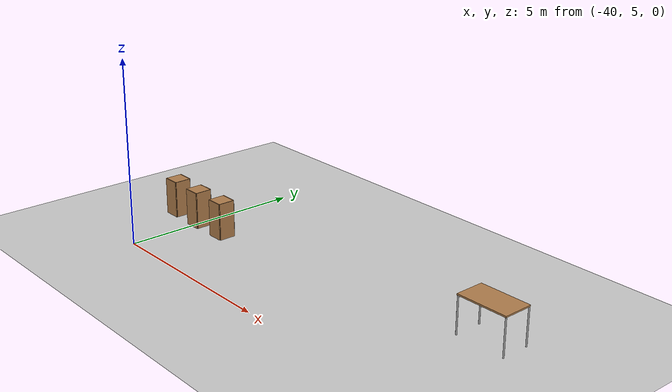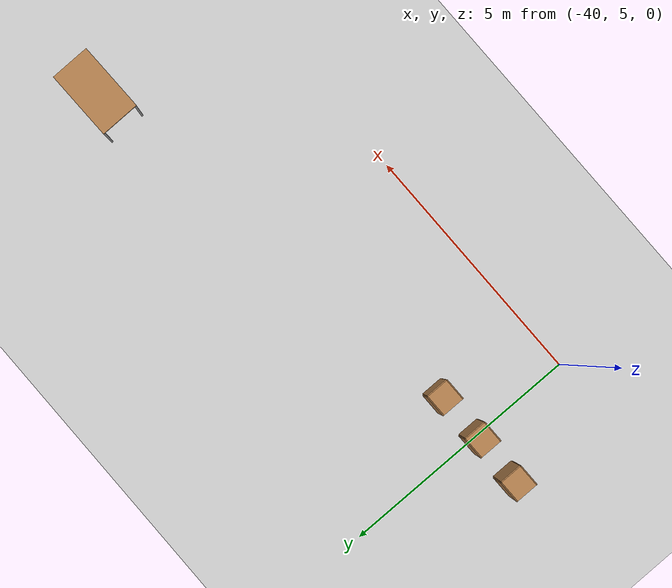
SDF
<sdf version="1.6">
 <world name="default">
  <model name="ground_plane">
   <static>1</static>
   <link name="link">
    <collision name="collision">
     <geometry><plane><normal>0 0 1</normal><size>100 100</size></plane></geometry>
     <surface><friction><ode><mu>100</mu><mu2>50</mu2></ode></friction></surface>
    </collision>
    <visual name="visual">
     <cast_shadows>0</cast_shadows>
     <geometry><plane><normal>0 0 1</normal><size>100 100</size></plane></geometry>
     <material>
      <script><uri>file://media/materials/scripts/gazebo.material</uri><name>Gazebo/Grey</name></script>
     </material>
    </visual>
   </link>
  </model>
  <model name="cabinet">
   <static>1</static>
   <link name="cabinet_bottom_plate">
    <inertial>
     <pose>0 0 -1 0 -0 0</pose>
     <inertia><ixx>2.05</ixx><ixy>0</ixy><ixz>0</ixz><iyy>2.05</iyy><iyz>0</iyz><izz>2.05</izz></inertia>
     <mass>25</mass>
    </inertial>
    <collision name="cabinet_bottom_plate_geom">
     <pose>0 0 0.01 0 -0 0</pose>
     <geometry><box><size>0.45 0.45 0.02</size></box></geometry>
    </collision>
    <visual name="cabinet_bottom_plate_geom_visual">
     <pose>0 0 0.01 0 -0 0</pose>
     <geometry><box><size>0.45 0.45 0.02</size></box></geometry>
     <material>
      <script><uri>file://media/materials/scripts/gazebo.material</uri><name>Gazebo/Wood</name></script>
     </material>
    </visual>
    <collision name="cabinet_bottom_plate_geom_cabinet_back_plate">
     <pose>0.235 0 0.51 0 -0 0</pose>
     <geometry><box><size>0.02 0.45 1.02</size></box></geometry>
    </collision>
    <visual name="cabinet_bottom_plate_geom_cabinet_back_plate_visual">
     <pose>0.235 0 0.51 0 -0 0</pose>
     <geometry><box><size>0.02 0.45 1.02</size></box></geometry>
     <material>
      <script><uri>file://media/materials/scripts/gazebo.material</uri><name>Gazebo/Wood</name></script>
     </material>
    </visual>
    <collision name="cabinet_bottom_plate_geom_cabinet_left_plate">
     <pose>0 0.235 0.51 0 -0 0</pose>
     <geometry><box><size>0.45 0.02 1.02</size></box></geometry>
    </collision>
    <visual name="cabinet_bottom_plate_geom_cabinet_left_plate_visual">
     <pose>0 0.235 0.51 0 -0 0</pose>
     <geometry><box><size>0.45 0.02 1.02</size></box></geometry>
     <material>
      <script><uri>file://media/materials/scripts/gazebo.material</uri><name>Gazebo/Wood</name></script>
     </material>
    </visual>
    <collision name="cabinet_bottom_plate_geom_cabinet_middle_plate">
     <pose>0 0 0.51 0 -0 0</pose>
     <geometry><box><size>0.45 0.45 0.02</size></box></geometry>
    </collision>
    <visual name="cabinet_bottom_plate_geom_cabinet_middle_plate_visual">
     <pose>0 0 0.51 0 -0 0</pose>
     <geometry><box><size>0.45 0.45 0.02</size></box></geometry>
     <material>
      <script><uri>file://media/materials/scripts/gazebo.material</uri><name>Gazebo/Wood</name></script>
     </material>
    </visual>
    <collision name="cabinet_bottom_plate_geom_cabinet_right_plate">
     <pose>0 -0.235 0.51 0 -0 0</pose>
     <geometry><box><size>0.45 0.02 1.02</size></box></geometry>
    </collision>
    <visual name="cabinet_bottom_plate_geom_cabinet_right_plate_visual">
     <pose>0 -0.235 0.51 0 -0 0</pose>
     <geometry><box><size>0.45 0.02 1.02</size></box></geometry>
     <material>
      <script><uri>file://media/materials/scripts/gazebo.material</uri><name>Gazebo/Wood</name></script>
     </material>
    </visual>
    <collision name="cabinet_bottom_plate_geom_cabinet_top_plate">
     <pose>0 0 1.01 0 -0 0</pose>
     <geometry><box><size>0.45 0.45 0.02</size></box></geometry>
    </collision>
    <visual name="cabinet_bottom_plate_geom_cabinet_top_plate_visual">
     <pose>0 0 1.01 0 -0 0</pose>
     <geometry><box><size>0.45 0.45 0.02</size></box></geometry>
     <material>
      <script><uri>file://media/materials/scripts/gazebo.material</uri><name>Gazebo/Wood</name></script>
     </material>
    </visual>
   </link>
   <pose>-41.027 7.1085 0 0 -0 0</pose>
  </model>
  <model name="cabinet_0">
   <static>1</static>
   <link name="cabinet_bottom_plate">
    <inertial>
     <pose>0 0 -1 0 -0 0</pose>
     <inertia><ixx>2.05</ixx><ixy>0</ixy><ixz>0</ixz><iyy>2.05</iyy><iyz>0</iyz><izz>2.05</izz></inertia>
     <mass>25</mass>
    </inertial>
    <collision name="cabinet_bottom_plate_geom">
     <pose>0 0 0.01 0 -0 0</pose>
     <geometry><box><size>0.45 0.45 0.02</size></box></geometry>
    </collision>
    <visual name="cabinet_bottom_plate_geom_visual">
     <pose>0 0 0.01 0 -0 0</pose>
     <geometry><box><size>0.45 0.45 0.02</size></box></geometry>
     <material>
      <script><uri>file://media/materials/scripts/gazebo.material</uri><name>Gazebo/Wood</name></script>
     </material>
    </visual>
    <collision name="cabinet_bottom_plate_geom_cabinet_back_plate">
     <pose>0.235 0 0.51 0 -0 0</pose>
     <geometry><box><size>0.02 0.45 1.02</size></box></geometry>
    </collision>
    <visual name="cabinet_bottom_plate_geom_cabinet_back_plate_visual">
     <pose>0.235 0 0.51 0 -0 0</pose>
     <geometry><box><size>0.02 0.45 1.02</size></box></geometry>
     <material>
      <script><uri>file://media/materials/scripts/gazebo.material</uri><name>Gazebo/Wood</name></script>
     </material>
    </visual>
    <collision name="cabinet_bottom_plate_geom_cabinet_left_plate">
     <pose>0 0.235 0.51 0 -0 0</pose>
     <geometry><box><size>0.45 0.02 1.02</size></box></geometry>
    </collision>
    <visual name="cabinet_bottom_plate_geom_cabinet_left_plate_visual">
     <pose>0 0.235 0.51 0 -0 0</pose>
     <geometry><box><size>0.45 0.02 1.02</size></box></geometry>
     <material>
      <script><uri>file://media/materials/scripts/gazebo.material</uri><name>Gazebo/Wood</name></script>
     </material>
    </visual>
    <collision name="cabinet_bottom_plate_geom_cabinet_middle_plate">
     <pose>0 0 0.51 0 -0 0</pose>
     <geometry><box><size>0.45 0.45 0.02</size></box></geometry>
    </collision>
    <visual name="cabinet_bottom_plate_geom_cabinet_middle_plate_visual">
     <pose>0 0 0.51 0 -0 0</pose>
     <geometry><box><size>0.45 0.45 0.02</size></box></geometry>
     <material>
      <script><uri>file://media/materials/scripts/gazebo.material</uri><name>Gazebo/Wood</name></script>
     </material>
    </visual>
    <collision name="cabinet_bottom_plate_geom_cabinet_right_plate">
     <pose>0 -0.235 0.51 0 -0 0</pose>
     <geometry><box><size>0.45 0.02 1.02</size></box></geometry>
    </collision>
    <visual name="cabinet_bottom_plate_geom_cabinet_right_plate_visual">
     <pose>0 -0.235 0.51 0 -0 0</pose>
     <geometry><box><size>0.45 0.02 1.02</size></box></geometry>
     <material>
      <script><uri>file://media/materials/scripts/gazebo.material</uri><name>Gazebo/Wood</name></script>
     </material>
    </visual>
    <collision name="cabinet_bottom_plate_geom_cabinet_top_plate">
     <pose>0 0 1.01 0 -0 0</pose>
     <geometry><box><size>0.45 0.45 0.02</size></box></geometry>
    </collision>
    <visual name="cabinet_bottom_plate_geom_cabinet_top_plate_visual">
     <pose>0 0 1.01 0 -0 0</pose>
     <geometry><box><size>0.45 0.45 0.02</size></box></geometry>
     <material>
      <script><uri>file://media/materials/scripts/gazebo.material</uri><name>Gazebo/Wood</name></script>
     </material>
    </visual>
   </link>
   <pose>-40.0044 7.08571 0 0 -0 0</pose>
  </model>
  <model name="cabinet_1">
   <static>1</static>
   <link name="cabinet_bottom_plate">
    <inertial>
     <pose>0 0 -1 0 -0 0</pose>
     <inertia><ixx>2.05</ixx><ixy>0</ixy><ixz>0</ixz><iyy>2.05</iyy><iyz>0</iyz><izz>2.05</izz></inertia>
     <mass>25</mass>
    </inertial>
    <collision name="cabinet_bottom_plate_geom">
     <pose>0 0 0.01 0 -0 0</pose>
     <geometry><box><size>0.45 0.45 0.02</size></box></geometry>
    </collision>
    <visual name="cabinet_bottom_plate_geom_visual">
     <pose>0 0 0.01 0 -0 0</pose>
     <geometry><box><size>0.45 0.45 0.02</size></box></geometry>
     <material>
      <script><uri>file://media/materials/scripts/gazebo.material</uri><name>Gazebo/Wood</name></script>
     </material>
    </visual>
    <collision name="cabinet_bottom_plate_geom_cabinet_back_plate">
     <pose>0.235 0 0.51 0 -0 0</pose>
     <geometry><box><size>0.02 0.45 1.02</size></box></geometry>
    </collision>
    <visual name="cabinet_bottom_plate_geom_cabinet_back_plate_visual">
     <pose>0.235 0 0.51 0 -0 0</pose>
     <geometry><box><size>0.02 0.45 1.02</size></box></geometry>
     <material>
      <script><uri>file://media/materials/scripts/gazebo.material</uri><name>Gazebo/Wood</name></script>
     </material>
    </visual>
    <collision name="cabinet_bottom_plate_geom_cabinet_left_plate">
     <pose>0 0.235 0.51 0 -0 0</pose>
     <geometry><box><size>0.45 0.02 1.02</size></box></geometry>
    </collision>
    <visual name="cabinet_bottom_plate_geom_cabinet_left_plate_visual">
     <pose>0 0.235 0.51 0 -0 0</pose>
     <geometry><box><size>0.45 0.02 1.02</size></box></geometry>
     <material>
      <script><uri>file://media/materials/scripts/gazebo.material</uri><name>Gazebo/Wood</name></script>
     </material>
    </visual>
    <collision name="cabinet_bottom_plate_geom_cabinet_middle_plate">
     <pose>0 0 0.51 0 -0 0</pose>
     <geometry><box><size>0.45 0.45 0.02</size></box></geometry>
    </collision>
    <visual name="cabinet_bottom_plate_geom_cabinet_middle_plate_visual">
     <pose>0 0 0.51 0 -0 0</pose>
     <geometry><box><size>0.45 0.45 0.02</size></box></geometry>
     <material>
      <script><uri>file://media/materials/scripts/gazebo.material</uri><name>Gazebo/Wood</name></script>
     </material>
    </visual>
    <collision name="cabinet_bottom_plate_geom_cabinet_right_plate">
     <pose>0 -0.235 0.51 0 -0 0</pose>
     <geometry><box><size>0.45 0.02 1.02</size></box></geometry>
    </collision>
    <visual name="cabinet_bottom_plate_geom_cabinet_right_plate_visual">
     <pose>0 -0.235 0.51 0 -0 0</pose>
     <geometry><box><size>0.45 0.02 1.02</size></box></geometry>
     <material>
      <script><uri>file://media/materials/scripts/gazebo.material</uri><name>Gazebo/Wood</name></script>
     </material>
    </visual>
    <collision name="cabinet_bottom_plate_geom_cabinet_top_plate">
     <pose>0 0 1.01 0 -0 0</pose>
     <geometry><box><size>0.45 0.45 0.02</size></box></geometry>
    </collision>
    <visual name="cabinet_bottom_plate_geom_cabinet_top_plate_visual">
     <pose>0 0 1.01 0 -0 0</pose>
     <geometry><box><size>0.45 0.45 0.02</size></box></geometry>
     <material>
      <script><uri>file://media/materials/scripts/gazebo.material</uri><name>Gazebo/Wood</name></script>
     </material>
    </visual>
   </link>
   <pose>-38.9774 7.10391 0 0 -0 0</pose>
  </model>
  <model name="table_0">
   <static>0</static>
   <link name="link">
    <collision name="surface">
     <pose>0 0 1 0 -0 0</pose>
     <geometry><box><size>1.5 0.8 0.03</size></box></geometry>
     <surface><friction><ode><mu>0.6</mu><mu2>0.6</mu2></ode></friction></surface>
    </collision>
    <visual name="visual1">
     <pose>0 0 1 0 -0 0</pose>
     <geometry><box><size>1.4 0.8 0.04</size></box></geometry>
     <material>
      <script><uri>file://media/materials/scripts/gazebo.material</uri><name>Gazebo/Wood</name></script>
     </material>
    </visual>
    <collision name="front_left_leg">
     <pose>0.68 0.38 0.5 0 -0 0</pose>
     <geometry><cylinder><radius>0.02</radius><length>1</length></cylinder></geometry>
    </collision>
    <visual name="front_left_leg">
     <pose>0.68 0.38 0.5 0 -0 0</pose>
     <geometry><cylinder><radius>0.02</radius><length>1</length></cylinder></geometry>
     <material>
      <script><uri>file://media/materials/scripts/gazebo.material</uri><name>Gazebo/Grey</name></script>
     </material>
    </visual>
    <collision name="front_right_leg">
     <pose>0.68 -0.38 0.5 0 -0 0</pose>
     <geometry><cylinder><radius>0.02</radius><length>1</length></cylinder></geometry>
    </collision>
    <visual name="front_right_leg">
     <pose>0.68 -0.38 0.5 0 -0 0</pose>
     <geometry><cylinder><radius>0.02</radius><length>1</length></cylinder></geometry>
     <material>
      <script><uri>file://media/materials/scripts/gazebo.material</uri><name>Gazebo/Grey</name></script>
     </material>
    </visual>
    <collision name="back_right_leg">
     <pose>-0.68 -0.38 0.5 0 -0 0</pose>
     <geometry><cylinder><radius>0.02</radius><length>1</length></cylinder></geometry>
    </collision>
    <visual name="back_right_leg">
     <pose>-0.68 -0.38 0.5 0 -0 0</pose>
     <geometry><cylinder><radius>0.02</radius><length>1</length></cylinder></geometry>
     <material>
      <script><uri>file://media/materials/scripts/gazebo.material</uri><name>Gazebo/Grey</name></script>
     </material>
    </visual>
    <collision name="back_left_leg">
     <pose>-0.68 0.38 0.5 0 -0 0</pose>
     <geometry><cylinder><radius>0.02</radius><length>1</length></cylinder></geometry>
    </collision>
    <visual name="back_left_leg">
     <pose>-0.68 0.38 0.5 0 -0 0</pose>
     <geometry><cylinder><radius>0.02</radius><length>1</length></cylinder></geometry>
     <material>
      <script><uri>file://media/materials/scripts/gazebo.material</uri><name>Gazebo/Grey</name></script>
     </material>
    </visual>
    <inertial>
     <inertia><ixx>1</ixx><ixy>0</ixy><ixz>0</ixz><iyy>1</iyy><iyz>0</iyz><izz>1</izz></inertia>
     <mass>1</mass>
    </inertial>
   </link>
   <pose>-30.5552 8.301 -2e-06 0 -0 0.012737</pose>
  </model>
 </world>
</sdf>
